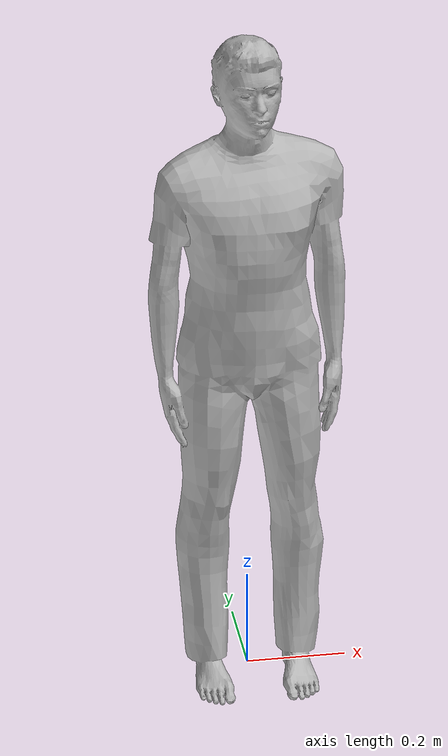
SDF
<?xml version="1.0"?>
<sdf version="1.6">
  <model name="{model_name}">
    <static>false</static>
    <pose>0 0 0 0 0 0</pose>
    <link name="human_link">
      <gravity>0</gravity>
      <self_collide>false</self_collide>
      <inertial>
        <mass>1.0</mass>
        <inertia>
          <ixx>0.01</ixx><iyy>0.01</iyy><izz>0.01</izz>
          <ixy>0</ixy><ixz>0</ixz><iyz>0</iyz>
        </inertia>
      </inertial>
{collision_block}
      <visual name="visual">
        <geometry>
          <mesh>
            <uri>model://person_standing/meshes/standing.dae</uri>
            <scale>0.7 0.7 0.7</scale>
          </mesh>
        </geometry>
      </visual>
    </link>
  </model>
</sdf>
